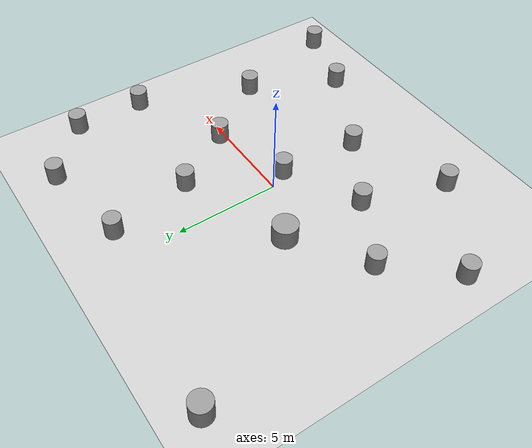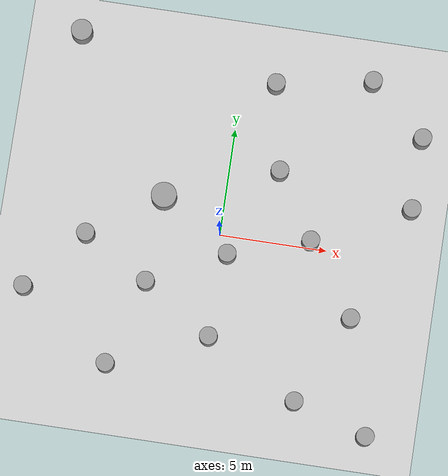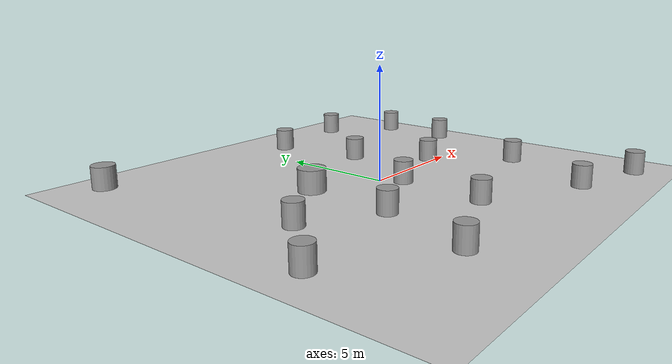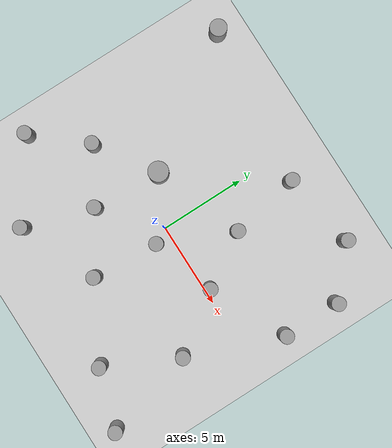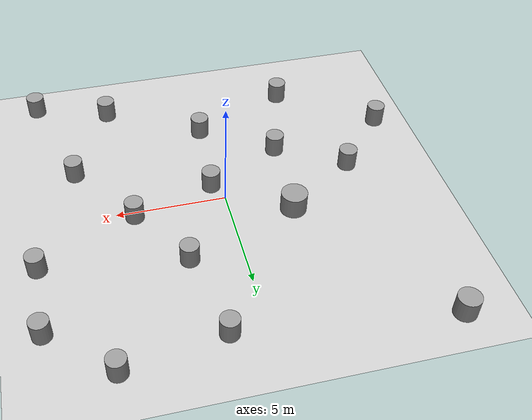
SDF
<sdf version="1.7">
 <world name="default">
  <light name="sun" type="directional">
   <pose>0 0 10 0 -0 0</pose>
   <diffuse>0.8 0.8 0.8 1</diffuse>
   <specular>0.2 0.2 0.2 1</specular>
   <attenuation>
    <range>1000</range>
    <constant>0.9</constant>
    <linear>0.01</linear>
    <quadratic>0.001</quadratic>
   </attenuation>
   <direction>-0.5 0.1 -0.9</direction>
   <spot><inner_angle>0</inner_angle><outer_angle>0</outer_angle><falloff>0</falloff></spot>
  </light>
  <model name="ground_plane">
   <static>1</static>
   <link name="link">
    <collision name="collision">
     <geometry><plane><normal>0 0 1</normal><size>100 100</size></plane></geometry>
     <surface>
      <contact><collide_bitmask>65535</collide_bitmask></contact>
      <friction><ode><mu>100</mu><mu2>50</mu2></ode></friction>
     </surface>
    </collision>
    <visual name="visual">
     <cast_shadows>0</cast_shadows>
     <geometry><plane><normal>0 0 1</normal><size>100 100</size></plane></geometry>
     <material>
      <script><uri>file://media/materials/scripts/gazebo.material</uri><name>Gazebo/Grey</name></script>
     </material>
    </visual>
   </link>
  </model>
  <gravity>0 0 -9.8</gravity>
  <magnetic_field>6e-06 2.3e-05 -4.2e-05</magnetic_field>
  <atmosphere type="adiabatic"/>
  <physics type="ode">
   <max_step_size>0.001</max_step_size>
   <real_time_factor>1</real_time_factor>
   <real_time_update_rate>1000</real_time_update_rate>
  </physics>
  <scene><ambient>0.4 0.4 0.4 1</ambient><background>0.7 0.7 0.7 1</background><shadows>1</shadows></scene>
  <spherical_coordinates>
   <surface_model>EARTH_WGS84</surface_model>
   <latitude_deg>0</latitude_deg>
   <longitude_deg>0</longitude_deg>
   <elevation>0</elevation>
   <heading_deg>0</heading_deg>
  </spherical_coordinates>
  <model name="unit_cylinder">
   <pose>-2.80994 1.3588 0.499994 -4e-06 5e-06 0</pose>
   <link name="link">
    <inertial>
     <mass>1</mass>
     <inertia><ixx>0.145833</ixx><ixy>0</ixy><ixz>0</ixz><iyy>0.145833</iyy><iyz>0</iyz><izz>0.125</izz></inertia>
    </inertial>
    <collision name="collision">
     <geometry><cylinder><radius>0.594464</radius><length>1</length></cylinder></geometry>
    </collision>
    <visual name="visual">
     <geometry><cylinder><radius>0.594464</radius><length>1</length></cylinder></geometry>
     <material>
      <script><name>Gazebo/Grey</name><uri>file://media/materials/scripts/gazebo.material</uri></script>
     </material>
    </visual>
   </link>
  </model>
  <model name="unit_cylinder_clone">
   <pose>4.20768 0.299024 0.5 0 -0 0</pose>
   <link name="link">
    <inertial>
     <mass>1</mass>
     <inertia><ixx>0.145833</ixx><ixy>0</ixy><ixz>0</ixz><iyy>0.145833</iyy><iyz>0</iyz><izz>0.125</izz></inertia>
    </inertial>
    <collision name="collision">
     <geometry><cylinder><radius>0.420546</radius><length>1</length></cylinder></geometry>
    </collision>
    <visual name="visual">
     <geometry><cylinder><radius>0.420546</radius><length>1</length></cylinder></geometry>
     <material>
      <script><name>Gazebo/Grey</name><uri>file://media/materials/scripts/gazebo.material</uri></script>
     </material>
    </visual>
   </link>
  </model>
  <model name="unit_cylinder_clone_0">
   <pose>0.482311 -0.883375 0.5 0 -0 0</pose>
   <link name="link">
    <inertial>
     <mass>1</mass>
     <inertia><ixx>0.145833</ixx><ixy>0</ixy><ixz>0</ixz><iyy>0.145833</iyy><iyz>0</iyz><izz>0.125</izz></inertia>
    </inertial>
    <collision name="collision">
     <geometry><cylinder><radius>0.420546</radius><length>1</length></cylinder></geometry>
    </collision>
    <visual name="visual">
     <geometry><cylinder><radius>0.420546</radius><length>1</length></cylinder></geometry>
     <material>
      <script><name>Gazebo/Grey</name><uri>file://media/materials/scripts/gazebo.material</uri></script>
     </material>
    </visual>
   </link>
  </model>
  <model name="unit_cylinder_clone_1">
   <pose>-6.12488 -0.887082 0.5 0 -0 0</pose>
   <link name="link">
    <inertial>
     <mass>1</mass>
     <inertia><ixx>0.145833</ixx><ixy>0</ixy><ixz>0</ixz><iyy>0.145833</iyy><iyz>0</iyz><izz>0.125</izz></inertia>
    </inertial>
    <collision name="collision">
     <geometry><cylinder><radius>0.420546</radius><length>1</length></cylinder></geometry>
    </collision>
    <visual name="visual">
     <geometry><cylinder><radius>0.420546</radius><length>1</length></cylinder></geometry>
     <material>
      <script><name>Gazebo/Grey</name><uri>file://media/materials/scripts/gazebo.material</uri></script>
     </material>
    </visual>
   </link>
  </model>
  <model name="unit_cylinder_clone_2">
   <pose>2.32167 3.31333 0.499998 2e-06 1e-06 0</pose>
   <link name="link">
    <inertial>
     <mass>1</mass>
     <inertia><ixx>0.145833</ixx><ixy>0</ixy><ixz>0</ixz><iyy>0.145833</iyy><iyz>0</iyz><izz>0.125</izz></inertia>
    </inertial>
    <collision name="collision">
     <geometry><cylinder><radius>0.420546</radius><length>1</length></cylinder></geometry>
    </collision>
    <visual name="visual">
     <geometry><cylinder><radius>0.420546</radius><length>1</length></cylinder></geometry>
     <material>
      <script><name>Gazebo/Grey</name><uri>file://media/materials/scripts/gazebo.material</uri></script>
     </material>
    </visual>
   </link>
  </model>
  <model name="unit_cylinder_clone_3">
   <pose>1.56022 7.35325 0.5 0 -0 0</pose>
   <link name="link">
    <inertial>
     <mass>1</mass>
     <inertia><ixx>0.145833</ixx><ixy>0</ixy><ixz>0</ixz><iyy>0.145833</iyy><iyz>0</iyz><izz>0.125</izz></inertia>
    </inertial>
    <collision name="collision">
     <geometry><cylinder><radius>0.420546</radius><length>1</length></cylinder></geometry>
    </collision>
    <visual name="visual">
     <geometry><cylinder><radius>0.420546</radius><length>1</length></cylinder></geometry>
     <material>
      <script><name>Gazebo/Grey</name><uri>file://media/materials/scripts/gazebo.material</uri></script>
     </material>
    </visual>
   </link>
  </model>
  <model name="unit_cylinder_clone_4">
   <pose>6.00879 8.12567 0.499998 2e-06 1e-06 0</pose>
   <link name="link">
    <inertial>
     <mass>1</mass>
     <inertia><ixx>0.145833</ixx><ixy>0</ixy><ixz>0</ixz><iyy>0.145833</iyy><iyz>0</iyz><izz>0.125</izz></inertia>
    </inertial>
    <collision name="collision">
     <geometry><cylinder><radius>0.420546</radius><length>1</length></cylinder></geometry>
    </collision>
    <visual name="visual">
     <geometry><cylinder><radius>0.420546</radius><length>1</length></cylinder></geometry>
     <material>
      <script><name>Gazebo/Grey</name><uri>file://media/materials/scripts/gazebo.material</uri></script>
     </material>
    </visual>
   </link>
  </model>
  <model name="unit_cylinder_clone_5">
   <pose>8.62306 2.43649 0.5 0 -0 0</pose>
   <link name="link">
    <inertial>
     <mass>1</mass>
     <inertia><ixx>0.145833</ixx><ixy>0</ixy><ixz>0</ixz><iyy>0.145833</iyy><iyz>0</iyz><izz>0.125</izz></inertia>
    </inertial>
    <collision name="collision">
     <geometry><cylinder><radius>0.420546</radius><length>1</length></cylinder></geometry>
    </collision>
    <visual name="visual">
     <geometry><cylinder><radius>0.420546</radius><length>1</length></cylinder></geometry>
     <material>
      <script><name>Gazebo/Grey</name><uri>file://media/materials/scripts/gazebo.material</uri></script>
     </material>
    </visual>
   </link>
  </model>
  <model name="unit_cylinder_clone_6">
   <pose>6.54105 -3 0.499998 2e-06 1e-06 0</pose>
   <link name="link">
    <inertial>
     <mass>1</mass>
     <inertia><ixx>0.145833</ixx><ixy>0</ixy><ixz>0</ixz><iyy>0.145833</iyy><iyz>0</iyz><izz>0.125</izz></inertia>
    </inertial>
    <collision name="collision">
     <geometry><cylinder><radius>0.420546</radius><length>1</length></cylinder></geometry>
    </collision>
    <visual name="visual">
     <geometry><cylinder><radius>0.420546</radius><length>1</length></cylinder></geometry>
     <material>
      <script><name>Gazebo/Grey</name><uri>file://media/materials/scripts/gazebo.material</uri></script>
     </material>
    </visual>
   </link>
  </model>
  <model name="unit_cylinder_clone_7">
   <pose>0.195336 -4.78591 0.499998 2e-06 1e-06 0</pose>
   <link name="link">
    <inertial>
     <mass>1</mass>
     <inertia><ixx>0.145833</ixx><ixy>0</ixy><ixz>0</ixz><iyy>0.145833</iyy><iyz>0</iyz><izz>0.125</izz></inertia>
    </inertial>
    <collision name="collision">
     <geometry><cylinder><radius>0.420546</radius><length>1</length></cylinder></geometry>
    </collision>
    <visual name="visual">
     <geometry><cylinder><radius>0.420546</radius><length>1</length></cylinder></geometry>
     <material>
      <script><name>Gazebo/Grey</name><uri>file://media/materials/scripts/gazebo.material</uri></script>
     </material>
    </visual>
   </link>
  </model>
  <model name="unit_cylinder_clone_8">
   <pose>-3.05199 -2.68227 0.499997 -2e-06 -2e-06 0</pose>
   <link name="link">
    <inertial>
     <mass>1</mass>
     <inertia><ixx>0.145833</ixx><ixy>0</ixy><ixz>0</ixz><iyy>0.145833</iyy><iyz>0</iyz><izz>0.125</izz></inertia>
    </inertial>
    <collision name="collision">
     <geometry><cylinder><radius>0.420546</radius><length>1</length></cylinder></geometry>
    </collision>
    <visual name="visual">
     <geometry><cylinder><radius>0.420546</radius><length>1</length></cylinder></geometry>
     <material>
      <script><name>Gazebo/Grey</name><uri>file://media/materials/scripts/gazebo.material</uri></script>
     </material>
    </visual>
   </link>
  </model>
  <model name="unit_cylinder_clone_9">
   <pose>-8.59964 -3.72743 0.499998 2e-06 1e-06 0</pose>
   <link name="link">
    <inertial>
     <mass>1</mass>
     <inertia><ixx>0.145833</ixx><ixy>0</ixy><ixz>0</ixz><iyy>0.145833</iyy><iyz>0</iyz><izz>0.125</izz></inertia>
    </inertial>
    <collision name="collision">
     <geometry><cylinder><radius>0.420546</radius><length>1</length></cylinder></geometry>
    </collision>
    <visual name="visual">
     <geometry><cylinder><radius>0.420546</radius><length>1</length></cylinder></geometry>
     <material>
      <script><name>Gazebo/Grey</name><uri>file://media/materials/scripts/gazebo.material</uri></script>
     </material>
    </visual>
   </link>
  </model>
  <model name="unit_cylinder_clone_10">
   <pose>-4.30362 -6.70872 0.499998 2e-06 1e-06 0</pose>
   <link name="link">
    <inertial>
     <mass>1</mass>
     <inertia><ixx>0.145833</ixx><ixy>0</ixy><ixz>0</ixz><iyy>0.145833</iyy><iyz>0</iyz><izz>0.125</izz></inertia>
    </inertial>
    <collision name="collision">
     <geometry><cylinder><radius>0.420546</radius><length>1</length></cylinder></geometry>
    </collision>
    <visual name="visual">
     <geometry><cylinder><radius>0.420546</radius><length>1</length></cylinder></geometry>
     <material>
      <script><name>Gazebo/Grey</name><uri>file://media/materials/scripts/gazebo.material</uri></script>
     </material>
    </visual>
   </link>
  </model>
  <model name="unit_cylinder_0">
   <pose>-7.76944 8.4736 0.499994 -4e-06 -4e-06 -0</pose>
   <link name="link">
    <inertial>
     <mass>1</mass>
     <inertia><ixx>0.145833</ixx><ixy>0</ixy><ixz>0</ixz><iyy>0.145833</iyy><iyz>0</iyz><izz>0.125</izz></inertia>
    </inertial>
    <collision name="collision">
     <geometry><cylinder><radius>0.5</radius><length>1</length></cylinder></geometry>
    </collision>
    <visual name="visual">
     <geometry><cylinder><radius>0.5</radius><length>1</length></cylinder></geometry>
     <material>
      <script><name>Gazebo/Grey</name><uri>file://media/materials/scripts/gazebo.material</uri></script>
     </material>
    </visual>
   </link>
  </model>
  <model name="unit_cylinder_clone_11">
   <pose>8.65183 5.79429 0.499998 2e-06 1e-06 0</pose>
   <link name="link">
    <inertial>
     <mass>1</mass>
     <inertia><ixx>0.145833</ixx><ixy>0</ixy><ixz>0</ixz><iyy>0.145833</iyy><iyz>0</iyz><izz>0.125</izz></inertia>
    </inertial>
    <collision name="collision">
     <geometry><cylinder><radius>0.420546</radius><length>1</length></cylinder></geometry>
    </collision>
    <visual name="visual">
     <geometry><cylinder><radius>0.420546</radius><length>1</length></cylinder></geometry>
     <material>
      <script><name>Gazebo/Grey</name><uri>file://media/materials/scripts/gazebo.material</uri></script>
     </material>
    </visual>
   </link>
  </model>
  <model name="unit_cylinder_clone_12">
   <pose>4.52332 -7.16172 0.499996 0 -0 0</pose>
   <link name="link">
    <inertial>
     <mass>1</mass>
     <inertia><ixx>0.145833</ixx><ixy>0</ixy><ixz>0</ixz><iyy>0.145833</iyy><iyz>0</iyz><izz>0.125</izz></inertia>
    </inertial>
    <collision name="collision">
     <geometry><cylinder><radius>0.420546</radius><length>1</length></cylinder></geometry>
    </collision>
    <visual name="visual">
     <geometry><cylinder><radius>0.420546</radius><length>1</length></cylinder></geometry>
     <material>
      <script><name>Gazebo/Grey</name><uri>file://media/materials/scripts/gazebo.material</uri></script>
     </material>
    </visual>
   </link>
  </model>
  <model name="unit_cylinder_clone_13">
   <pose>7.96621 -8.28454 0.499996 1e-06 1e-06 0</pose>
   <link name="link">
    <inertial>
     <mass>1</mass>
     <inertia><ixx>0.145833</ixx><ixy>0</ixy><ixz>0</ixz><iyy>0.145833</iyy><iyz>0</iyz><izz>0.125</izz></inertia>
    </inertial>
    <collision name="collision">
     <geometry><cylinder><radius>0.420546</radius><length>1</length></cylinder></geometry>
    </collision>
    <visual name="visual">
     <geometry><cylinder><radius>0.420546</radius><length>1</length></cylinder></geometry>
     <material>
      <script><name>Gazebo/Grey</name><uri>file://media/materials/scripts/gazebo.material</uri></script>
     </material>
    </visual>
   </link>
  </model>
 </world>
</sdf>
